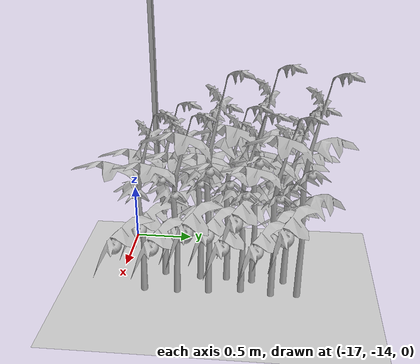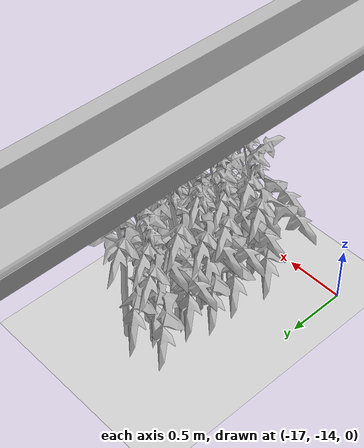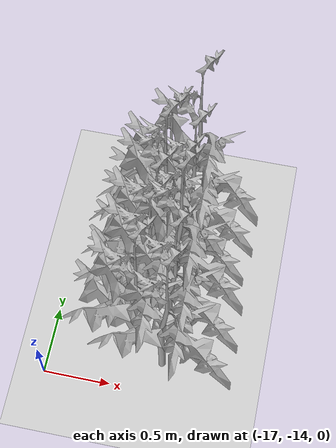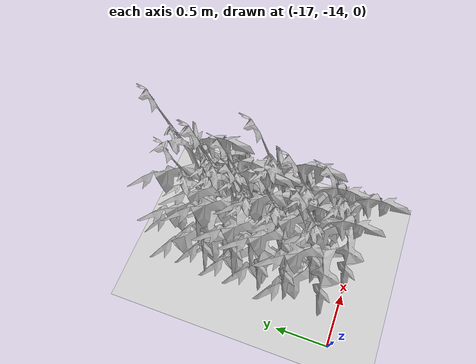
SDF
<sdf version="1.6">
 <world name="default">
  <model name="ground_plane">
   <static>1</static>
   <link name="link">
    <collision name="collision">
     <geometry><plane><normal>0 0 1</normal><size>100 100</size></plane></geometry>
     <surface>
      <contact><collide_bitmask>65535</collide_bitmask></contact>
      <friction><ode><mu>100</mu><mu2>50</mu2></ode></friction>
     </surface>
    </collision>
    <visual name="visual">
     <cast_shadows>0</cast_shadows>
     <geometry><plane><normal>0 0 1</normal><size>100 100</size></plane></geometry>
     <material>
      <script><uri>file://media/materials/scripts/gazebo.material</uri><name>Gazebo/Grey</name></script>
     </material>
    </visual>
   </link>
  </model>
  <model name="greenhouse">
   <static>1</static>
   <link name="link">
    <collision name="collision">
     <geometry>
      <mesh><scale>0.05 0.05 0.05</scale><uri>model://greenhouse/meshes/greenhouse.dae</uri></mesh>
     </geometry>
    </collision>
    <visual name="visual">
     <geometry>
      <mesh><scale>0.03 0.03 0.03</scale><uri>model://greenhouse/meshes/greenhouse.dae</uri></mesh>
     </geometry>
    </visual>
   </link>
   <pose>-24.6631 -23.579 0 0 -0 0</pose>
  </model>
  <model name="Front_Plant_1_23">
   <model name="tomato_plant_medium">
    <static>1</static>
    <link name="link">
     <collision name="collision">
      <pose>0 0 0 1.5708 -0 0</pose>
      <geometry><mesh><scale>0.5 0.5 0.5</scale><uri>model://stick/meshes/stick.dae</uri></mesh></geometry>
     </collision>
     <visual name="visual">
      <geometry>
       <mesh><scale>5e-06 5e-06 6e-06</scale><uri>model://tomato_plant_medium/meshes/tomato-plant.dae</uri></mesh>
      </geometry>
     </visual>
    </link>
    <pose>0.087453 -0.595994 0.012396 0 -0 0</pose>
   </model>
   <model name="tomato_plant_medium_0">
    <static>1</static>
    <link name="link">
     <collision name="collision">
      <pose>0 0 0 1.5708 -0 0</pose>
      <geometry><mesh><scale>0.5 0.5 0.5</scale><uri>model://stick/meshes/stick.dae</uri></mesh></geometry>
     </collision>
     <visual name="visual">
      <geometry>
       <mesh><scale>5e-06 5e-06 6e-06</scale><uri>model://tomato_plant_medium/meshes/tomato-plant.dae</uri></mesh>
      </geometry>
     </visual>
    </link>
    <pose>-0.086166 -0.251822 0.012396 0 -0 0</pose>
   </model>
   <model name="tomato_plant_medium_1">
    <static>1</static>
    <link name="link">
     <collision name="collision">
      <pose>0 0 0 1.5708 -0 0</pose>
      <geometry><mesh><scale>0.5 0.5 0.5</scale><uri>model://stick/meshes/stick.dae</uri></mesh></geometry>
     </collision>
     <visual name="visual">
      <geometry>
       <mesh><scale>5e-06 5e-06 6e-06</scale><uri>model://tomato_plant_medium/meshes/tomato-plant.dae</uri></mesh>
      </geometry>
     </visual>
    </link>
    <pose>0.080199 0.118127 0.012396 0 -0 0</pose>
   </model>
   <model name="tomato_plant_small">
    <static>1</static>
    <link name="link">
     <collision name="collision">
      <pose>0 0 0 1.5708 -0 0</pose>
      <geometry><mesh><scale>0.5 0.45 0.5</scale><uri>model://stick/meshes/stick.dae</uri></mesh></geometry>
     </collision>
     <visual name="visual">
      <geometry>
       <mesh><scale>5e-06 5e-06 5e-06</scale><uri>model://tomato_plant_small/meshes/tomato-plant.dae</uri></mesh>
      </geometry>
     </visual>
    </link>
    <pose>0.099683 -1.12011 0.012396 0 -0 0</pose>
   </model>
   <model name="tomato_plant_small_0">
    <static>1</static>
    <link name="link">
     <collision name="collision">
      <pose>0 0 0 1.5708 -0 0</pose>
      <geometry><mesh><scale>0.5 0.45 0.5</scale><uri>model://stick/meshes/stick.dae</uri></mesh></geometry>
     </collision>
     <visual name="visual">
      <geometry>
       <mesh><scale>5e-06 5e-06 5e-06</scale><uri>model://tomato_plant_small/meshes/tomato-plant.dae</uri></mesh>
      </geometry>
     </visual>
    </link>
    <pose>-0.138771 -0.983982 0.012396 0 -0 0</pose>
   </model>
   <model name="tomato_plant_small_1">
    <static>1</static>
    <link name="link">
     <collision name="collision">
      <pose>0 0 0 1.5708 -0 0</pose>
      <geometry><mesh><scale>0.5 0.45 0.5</scale><uri>model://stick/meshes/stick.dae</uri></mesh></geometry>
     </collision>
     <visual name="visual">
      <geometry>
       <mesh><scale>5e-06 5e-06 5e-06</scale><uri>model://tomato_plant_small/meshes/tomato-plant.dae</uri></mesh>
      </geometry>
     </visual>
    </link>
    <pose>0.101334 -0.848814 0.012396 0 -0 0</pose>
   </model>
   <model name="tomato_plant_small_2">
    <static>1</static>
    <link name="link">
     <collision name="collision">
      <pose>0 0 0 1.5708 -0 0</pose>
      <geometry><mesh><scale>0.5 0.45 0.5</scale><uri>model://stick/meshes/stick.dae</uri></mesh></geometry>
     </collision>
     <visual name="visual">
      <geometry>
       <mesh><scale>5e-06 5e-06 5e-06</scale><uri>model://tomato_plant_small/meshes/tomato-plant.dae</uri></mesh>
      </geometry>
     </visual>
    </link>
    <pose>-0.103369 -0.683189 0.012396 0 -0 0</pose>
   </model>
   <model name="tomato_plant_small_3">
    <static>1</static>
    <link name="link">
     <collision name="collision">
      <pose>0 0 0 1.5708 -0 0</pose>
      <geometry><mesh><scale>0.5 0.45 0.5</scale><uri>model://stick/meshes/stick.dae</uri></mesh></geometry>
     </collision>
     <visual name="visual">
      <geometry>
       <mesh><scale>5e-06 5e-06 5e-06</scale><uri>model://tomato_plant_small/meshes/tomato-plant.dae</uri></mesh>
      </geometry>
     </visual>
    </link>
    <pose>-0.104381 -0.464811 0.012396 0 -0 0</pose>
   </model>
   <model name="tomato_plant_small_4">
    <static>1</static>
    <link name="link">
     <collision name="collision">
      <pose>0 0 0 1.5708 -0 0</pose>
      <geometry><mesh><scale>0.5 0.45 0.5</scale><uri>model://stick/meshes/stick.dae</uri></mesh></geometry>
     </collision>
     <visual name="visual">
      <geometry>
       <mesh><scale>5e-06 5e-06 5e-06</scale><uri>model://tomato_plant_small/meshes/tomato-plant.dae</uri></mesh>
      </geometry>
     </visual>
    </link>
    <pose>0.055604 -0.336879 0.012396 0 -0 0</pose>
   </model>
   <model name="tomato_plant_small_5">
    <static>1</static>
    <link name="link">
     <collision name="collision">
      <pose>0 0 0 1.5708 -0 0</pose>
      <geometry><mesh><scale>0.5 0.45 0.5</scale><uri>model://stick/meshes/stick.dae</uri></mesh></geometry>
     </collision>
     <visual name="visual">
      <geometry>
       <mesh><scale>5e-06 5e-06 5e-06</scale><uri>model://tomato_plant_small/meshes/tomato-plant.dae</uri></mesh>
      </geometry>
     </visual>
    </link>
    <pose>0.085059 -0.092572 0.012396 0 -0 0</pose>
   </model>
   <model name="tomato_plant_small_6">
    <static>1</static>
    <link name="link">
     <collision name="collision">
      <pose>0 0 0 1.5708 -0 0</pose>
      <geometry><mesh><scale>0.5 0.45 0.5</scale><uri>model://stick/meshes/stick.dae</uri></mesh></geometry>
     </collision>
     <visual name="visual">
      <geometry>
       <mesh><scale>5e-06 5e-06 5e-06</scale><uri>model://tomato_plant_small/meshes/tomato-plant.dae</uri></mesh>
      </geometry>
     </visual>
    </link>
    <pose>-0.096345 0.008888 0.012396 0 -0 0</pose>
   </model>
   <static>0</static>
   <pose>-16.2354 -12.6644 0 0 -0 0</pose>
  </model>
 </world>
</sdf>
